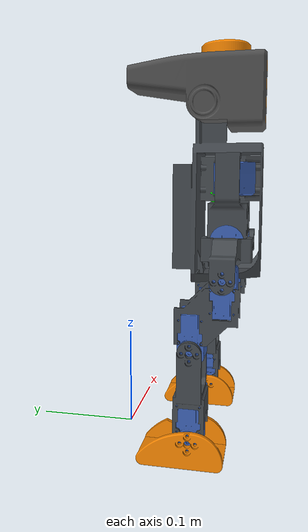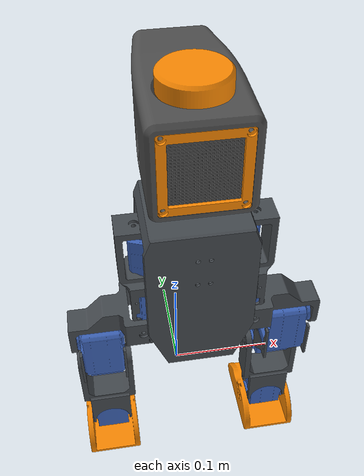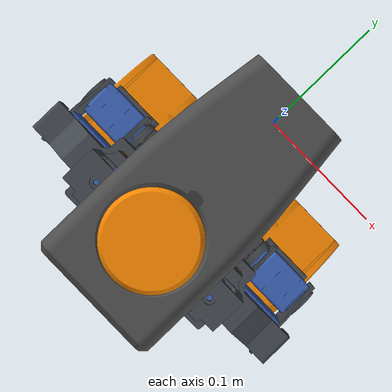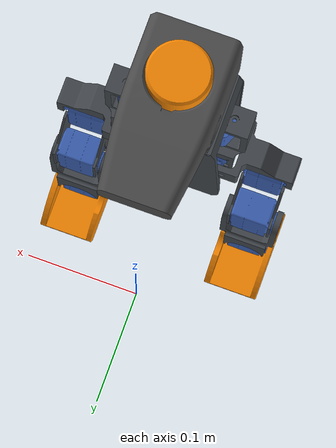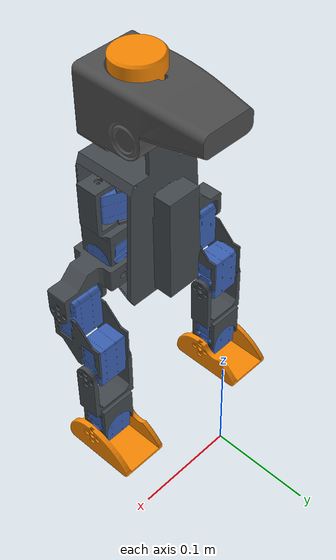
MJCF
<?xml version="1.0" ?>
<mujoco model="mini_pawo_export">
  <compiler angle="radian" meshdir="assets" autolimits="true" />
  <default>
    <default class="mini_pawo_export">
      <joint frictionloss="0.1" armature="0.015" />
      <position kp="10" dampratio="1" />
      <default class="visual">
        <geom type="mesh" contype="0" conaffinity="0" group="2" />
      </default>
      <default class="collision">
        <!-- Modified to disable self-collision but keep world collision -->
        <geom group="3" contype="1" conaffinity="0" />
      </default>
    </default>
  </default>
  <worldbody>
    <body name="torso" pos="0 0 0" quat="1 0 0 0" childclass="mini_pawo_export">
      <freejoint name="torso_freejoint" />
      <site name="imu" pos="0.000578677 -0.0890544 0.24954" size="0.01" type="sphere" rgba="0 1 0 1"/>
      <inertial pos="0.000578677 -0.0890544 0.24954" mass="0.420" fullinertia="0.000484452 0.000463436 0.000276136 -8.03923e-06 -6.23499e-07 7.19998e-05" />
      <geom type="mesh" class="visual" pos="0.000725367 -0.136837 0.34695" quat="1 1.7005e-08 7.105e-09 -8.081e-09" mesh="frame" material="frame_material" />
      <geom type="mesh" class="collision" pos="0.000725367 -0.136837 0.34695" quat="1 1.7005e-08 7.105e-09 -8.081e-09" mesh="frame" material="frame_material" />
      <geom type="mesh" class="visual" pos="0.000796077 -0.136877 0.347021" quat="1 1.7005e-08 7.105e-09 -8.081e-09" mesh="face" material="face_material" />
      <geom type="mesh" class="collision" pos="0.000796077 -0.136877 0.347021" quat="1 1.7005e-08 7.105e-09 -8.081e-09" mesh="face" material="face_material" />
      <geom type="mesh" class="visual" pos="0.00108385 -0.101194 0.195319" quat="1 1.7005e-08 7.105e-09 -8.081e-09" mesh="left_hip_yaw_servo" material="left_hip_yaw_servo_material" />
      <geom type="mesh" class="collision" pos="0.00108385 -0.101194 0.195319" quat="1 1.7005e-08 7.105e-09 -8.081e-09" mesh="left_hip_yaw_servo" material="left_hip_yaw_servo_material" />
      <geom type="mesh" class="visual" pos="0.00109354 -0.101247 0.195319" quat="1 1.7005e-08 7.105e-09 -8.081e-09" mesh="right_hip_yaw_servo" material="right_hip_yaw_servo_material" />
      <geom type="mesh" class="collision" pos="0.00109354 -0.101247 0.195319" quat="1 1.7005e-08 7.105e-09 -8.081e-09" mesh="right_hip_yaw_servo" material="right_hip_yaw_servo_material" />
      <geom type="mesh" class="visual" pos="0.00111615 -0.101226 0.195298" quat="1 1.7005e-08 7.105e-09 -8.081e-09" mesh="torso" material="torso_material" />
      <geom type="mesh" class="collision" pos="0.00111615 -0.101226 0.195298" quat="1 1.7005e-08 7.105e-09 -8.081e-09" mesh="torso" material="torso_material" />
      <geom type="mesh" class="visual" pos="0.000725367 -0.136977 0.34695" quat="1 1.7005e-08 7.105e-09 -8.081e-09" mesh="head" material="head_material" />
      <geom type="mesh" class="collision" pos="0.000725367 -0.136977 0.34695" quat="1 1.7005e-08 7.105e-09 -8.081e-09" mesh="head" material="head_material" />
      <geom type="mesh" class="visual" pos="0.000725367 -0.136977 0.34695" quat="1 1.7005e-08 7.105e-09 -8.081e-09" mesh="lidar" material="lidar_material" />
      <geom type="mesh" class="collision" pos="0.000725367 -0.136977 0.34695" quat="1 1.7005e-08 7.105e-09 -8.081e-09" mesh="lidar" material="lidar_material" />
      <body name="left_hip_yaw_case" pos="0.0363247 -0.103778 0.282335" quat="1.7005e-08 -1 -4.313e-09 7.105e-09">
        <joint axis="0 0 1" name="left_hip_yaw" type="hinge" range="-3.14 3.14" />
        <inertial pos="0.00235874 0.000276912 0.0576388" mass="0.088" fullinertia="6.22352e-05 6.22289e-05 1.53551e-05 -6.948e-08 -8.35602e-06 -3.70517e-07" />
        <geom type="mesh" class="visual" pos="-0.0358409 -0.00248042 0.0863252" quat="0 1 0 0" mesh="left_hip_yaw_case" material="left_hip_yaw_case_material" />
        <geom type="mesh" class="collision" pos="-0.0358409 -0.00248042 0.0863252" quat="0 1 0 0" mesh="left_hip_yaw_case" material="left_hip_yaw_case_material" />
        <geom type="mesh" class="visual" pos="-0.0356071 -0.00255163 0.0863215" quat="0 -1 -0 -0" mesh="left_hip_roll_servo" material="left_hip_roll_servo_material" />
        <geom type="mesh" class="collision" pos="-0.0356071 -0.00255163 0.0863215" quat="0 -1 -0 -0" mesh="left_hip_roll_servo" material="left_hip_roll_servo_material" />
        <body name="left_hip_roll_case" pos="-9.81985e-05 -0.0186498 0.0842236" quat="0.707107 -0.707107 3.864e-09 3.864e-09">
          <joint axis="0 0 1" name="left_hip_roll" type="hinge" range="-3.14 3.14" />
          <inertial pos="0.0275104 -0.00289827 0.0186226" mass="0.042" fullinertia="9.7662e-06 1.9477e-05 1.69846e-05 -2.0618e-06 -1.196e-09 -1.915e-09" />
          <geom type="mesh" class="visual" pos="-0.0354652 -0.00212887 0.0164546" quat="0.707107 -0.707107 -0 0" mesh="left_hip_roll_case" material="left_hip_roll_case_material" />
          <geom type="mesh" class="collision" pos="-0.0354652 -0.00212887 0.0164546" quat="0.707107 -0.707107 -0 0" mesh="left_hip_roll_case" material="left_hip_roll_case_material" />
          <body name="left_hip_pitch_case" pos="0.05825 -0.0222987 0.0186748" quat="0.707107 -1.0736e-08 0.707107 -1.0736e-08">
            <joint axis="0 0 1" name="left_hip_pitch" type="hinge" range="-3.14 3.14" />
            <inertial pos="0.013894 -0.0327895 -0.0186066" mass="0.123" fullinertia="7.95883e-05 4.23439e-05 9.65542e-05 -3.20003e-05 -1.55598e-07 -2.2858e-07" />
            <geom type="mesh" class="visual" pos="0.00224067 0.0201372 -0.0943654" quat="0.5 -0.5 -0.5 -0.5" mesh="left_hip_pitch_servo" material="left_hip_pitch_servo_material" />
            <geom type="mesh" class="collision" pos="0.00224067 0.0201372 -0.0943654" quat="0.5 -0.5 -0.5 -0.5" mesh="left_hip_pitch_servo" material="left_hip_pitch_servo_material" />
            <geom type="mesh" class="visual" pos="0.002258 0.0201794 -0.0943436" quat="0.5 -0.5 -0.5 -0.5" mesh="left_hip_pitch_case" material="left_hip_pitch_case_material" />
            <geom type="mesh" class="collision" pos="0.002258 0.0201794 -0.0943436" quat="0.5 -0.5 -0.5 -0.5" mesh="left_hip_pitch_case" material="left_hip_pitch_case_material" />
            <geom type="mesh" class="visual" pos="0.00228617 0.0201665 -0.0941654" quat="0.5 -0.5 -0.5 -0.5" mesh="left_knee_servo" material="left_knee_servo_material" />
            <geom type="mesh" class="collision" pos="0.00228617 0.0201665 -0.0941654" quat="0.5 -0.5 -0.5 -0.5" mesh="left_knee_servo" material="left_knee_servo_material" />
            <body name="left_knee_case" pos="0.027788 -0.0655791 -0.0376" quat="0.953717 0 0 0.300706">
              <joint axis="0 0 1" name="left_knee" type="hinge" range="-3.14 3.14" />
              <inertial pos="-0.0319413 -0.0464947 0.0188933" mass="0.09" fullinertia="5.10572e-05 3.44913e-05 5.52052e-05 -2.1165e-05 -1.10964e-07 -1.68052e-07" />
              <geom type="mesh" class="visual" pos="-0.0256451 0.0857559 -0.0561875" quat="0.5 -0.5 -0.5 -0.5" mesh="left_ankle_servo" material="left_ankle_servo_material" />
              <geom type="mesh" class="collision" pos="-0.0256451 0.0857559 -0.0561875" quat="0.5 -0.5 -0.5 -0.5" mesh="left_ankle_servo" material="left_ankle_servo_material" />
              <geom type="mesh" class="visual" pos="-0.0256872 0.0857043 -0.057205" quat="0.5 -0.5 -0.5 -0.5" mesh="left_knee_case" material="left_knee_case_material" />
              <geom type="mesh" class="collision" pos="-0.0256872 0.0857043 -0.057205" quat="0.5 -0.5 -0.5 -0.5" mesh="left_knee_case" material="left_knee_case_material" />
              <body name="left_foot" pos="-0.0469754 -0.0683012 -0.000174995" quat="0.953717 -0 -0 -0.300706">
                <joint axis="0 0 1" name="left_ankle" type="hinge" range="-3.14 3.14" />
                <inertial pos="0.0065865 -0.0167241 0.0187619" mass="0.036" fullinertia="1.14862e-05 2.53897e-05 1.86586e-05 6.35074e-07 -6.0493e-08 -1.64915e-07" />
                <geom name="left_foot_visual" type="mesh" class="visual" pos="0.0212202 0.153948 -0.0568561" quat="0.5 -0.5 -0.5 -0.5" mesh="left_foot" material="left_foot_material" />
                <geom class="collision" name="left_foot_collision" type="cylinder" size="0.02 0.04" pos="0.007 -0.007 0.02" euler="0 1.5708 0" friction="1.0 0.005 0.0001"/>
                <site name="left_foot_site" type="cylinder" size="0.02 0.04" pos="0.007 -0.007 0.02" euler="0 1.5708 0" rgba="0 1 0 0"/>
              </body>
            </body>
          </body>
        </body>
      </body>
      <body name="right_hip_yaw_case" pos="-0.0348965 -0.104355 0.282335" quat="1.7005e-08 -1 -4.313e-09 7.105e-09">
        <joint axis="0 0 1" name="right_hip_yaw" type="hinge" range="-3.14 3.14" />
        <inertial pos="-0.00235874 0.000276913 0.0576388" mass="0.088" fullinertia="6.22352e-05 6.22288e-05 1.53551e-05 -6.9478e-08 -8.35603e-06 -3.70518e-07" />
        <geom type="mesh" class="visual" pos="0.0358409 -0.00248042 0.0863252" quat="0 1 0 0" mesh="right_hip_yaw_case" material="right_hip_yaw_case_material" />
        <geom type="mesh" class="collision" pos="0.0358409 -0.00248042 0.0863252" quat="0 1 0 0" mesh="right_hip_yaw_case" material="right_hip_yaw_case_material" />
        <geom type="mesh" class="visual" pos="0.0356071 -0.00255163 0.0863215" quat="0 -1 0 0" mesh="right_hip_roll_servo" material="right_hip_roll_servo_material" />
        <geom type="mesh" class="collision" pos="0.0356071 -0.00255163 0.0863215" quat="0 -1 0 0" mesh="right_hip_roll_servo" material="right_hip_roll_servo_material" />
        <body name="right_hip_roll_case" pos="9.81985e-05 -0.0186498 0.0842236" quat="0.707107 -0.707107 3.864e-09 3.864e-09">
          <joint axis="0 0 1" name="right_hip_roll" type="hinge" range="-3.14 3.14" />
          <inertial pos="-0.0275104 -0.00289827 0.0186226" mass="0.042" fullinertia="9.7662e-06 1.9477e-05 1.69846e-05 -2.0618e-06 -1.196e-09 -1.915e-09" />
          <geom type="mesh" class="visual" pos="0.0354652 -0.00212887 0.0164546" quat="0.707107 -0.707107 0 0" mesh="right_hip_roll_case" material="right_hip_roll_case_material" />
          <geom type="mesh" class="collision" pos="0.0354652 -0.00212887 0.0164546" quat="0.707107 -0.707107 0 0" mesh="right_hip_roll_case" material="right_hip_roll_case_material" />
          <body name="right_hip_pitch_case" pos="-0.021 -0.0222987 0.0186748" quat="0.707107 -1.0736e-08 0.707107 -1.0736e-08">
            <joint axis="0 0 1" name="right_hip_pitch" type="hinge" range="-3.14 3.14" />
            <inertial pos="0.013894 -0.0327895 -0.0189934" mass="0.123" fullinertia="7.95883e-05 4.23439e-05 9.65542e-05 3.20003e-05 -1.55598e-07 2.2858e-07" />
            <geom type="mesh" class="visual" pos="0.00228617 0.0201665 0.0567654" quat="0.5 -0.5 -0.5 -0.5" mesh="right_knee_servo" material="right_knee_servo_material" />
            <geom type="mesh" class="collision" pos="0.00228617 0.0201665 0.0567654" quat="0.5 -0.5 -0.5 -0.5" mesh="right_knee_servo" material="right_knee_servo_material" />
            <geom type="mesh" class="visual" pos="0.00224067 0.0201372 0.0565654" quat="0.5 -0.5 -0.5 -0.5" mesh="right_hip_pitch_servo" material="right_hip_pitch_servo_material" />
            <geom type="mesh" class="collision" pos="0.00224067 0.0201372 0.0565654" quat="0.5 -0.5 -0.5 -0.5" mesh="right_hip_pitch_servo" material="right_hip_pitch_servo_material" />
            <geom type="mesh" class="visual" pos="0.002258 0.0201794 0.0567436" quat="0.5 -0.5 -0.5 -0.5" mesh="right_hip_pitch_case" material="right_hip_pitch_case_material" />
            <geom type="mesh" class="collision" pos="0.002258 0.0201794 0.0567436" quat="0.5 -0.5 -0.5 -0.5" mesh="right_hip_pitch_case" material="right_hip_pitch_case_material" />
            <body name="right_knee_case" pos="0.027788 -0.0655791 -0.0376" quat="0.953717 0 0 0.300706">
              <joint axis="0 0 1" name="right_knee" type="hinge" range="-3.14 3.14" />
              <inertial pos="-0.0319675 -0.0465268 0.0182431" mass="0.09" fullinertia="5.11278e-05 3.4532e-05 5.53101e-05 -2.12155e-05 -1.92518e-07 -2.87839e-07" />
              <geom type="mesh" class="visual" pos="-0.0256872 0.0857043 0.093255" quat="0.5 -0.5 -0.5 -0.5" mesh="right_ankle_servo" material="right_ankle_servo_material" />
              <geom type="mesh" class="collision" pos="-0.0256872 0.0857043 0.093255" quat="0.5 -0.5 -0.5 -0.5" mesh="right_ankle_servo" material="right_ankle_servo_material" />
              <geom type="mesh" class="visual" pos="-0.0256872 0.0857043 0.094455" quat="0.5 -0.5 -0.5 -0.5" mesh="right_knee_case" material="right_knee_case_material" />
              <geom type="mesh" class="collision" pos="-0.0256872 0.0857043 0.094455" quat="0.5 -0.5 -0.5 -0.5" mesh="right_knee_case" material="right_knee_case_material" />
              <body name="right_foot" pos="-0.0470175 -0.0683527 -0.000557531" quat="0.953717 -0 0 -0.300706">
                <joint axis="0 0 1" name="right_ankle" type="hinge" range="-3.14 3.14" />
                <inertial pos="0.00658657 -0.0167241 0.0184881" mass="0.036" fullinertia="1.14863e-05 2.53896e-05 1.86585e-05 6.35039e-07 6.0488e-08 1.64901e-07" />
                <geom name="right_foot_visual" type="mesh" class="visual" pos="0.0212202 0.153948 0.0941061" quat="0.5 -0.5 -0.5 -0.5" mesh="right_foot" material="right_foot_material" />
                <geom class="collision" name="right_foot_collision" type="cylinder" size="0.02 0.04" pos="0.007 -0.007 0.02" euler="0 1.5708 0" friction="1.0 0.005 0.0001"/>
                <site name="right_foot_site" type="cylinder" size="0.02 0.04" pos="0.007 -0.007 0.02" euler="0 1.5708 0" rgba="0 1 0 0"/>
              </body>
            </body>
          </body>
        </body>
      </body>
    </body>
  </worldbody>
  <asset>
    <mesh file="right_hip_pitch_case.stl" />
    <mesh file="left_ankle_servo.stl" />
    <mesh file="torso.stl" />
    <mesh file="right_ankle_servo.stl" />
    <mesh file="left_hip_pitch_servo.stl" />
    <mesh file="left_hip_yaw_case.stl" />
    <mesh file="right_knee_servo.stl" />
    <mesh file="right_hip_roll_case.stl" />
    <mesh file="right_hip_yaw_case.stl" />
    <mesh file="right_hip_yaw_servo.stl" />
    <mesh file="face.stl" />
    <mesh file="left_hip_roll_servo.stl" />
    <mesh file="head.stl" />
    <mesh file="frame.stl" />
    <mesh file="right_knee_case.stl" />
    <mesh file="lidar.stl" />
    <mesh file="left_hip_pitch_case.stl" />
    <mesh file="right_hip_roll_servo.stl" />
    <mesh file="right_hip_pitch_servo.stl" />
    <mesh file="left_knee_case.stl" />
    <mesh file="left_knee_servo.stl" />
    <mesh file="left_hip_yaw_servo.stl" />
    <mesh file="right_foot.stl" />
    <mesh file="left_hip_roll_case.stl" />
    <mesh file="left_foot.stl" />
    <material name="frame_material" rgba="0.972549 0.529412 0.00392157 1" />
    <material name="face_material" rgba="0.301961 0.301961 0.301961 1" />
    <material name="left_hip_yaw_servo_material" rgba="0.231373 0.380392 0.705882 1" />
    <material name="right_hip_yaw_servo_material" rgba="0.231373 0.380392 0.705882 1" />
    <material name="torso_material" rgba="0.262745 0.282353 0.301961 1" />
    <material name="head_material" rgba="0.301961 0.301961 0.301961 1" />
    <material name="lidar_material" rgba="0.972549 0.529412 0.00392157 1" />
    <material name="left_hip_yaw_case_material" rgba="0.262745 0.282353 0.301961 1" />
    <material name="left_hip_roll_servo_material" rgba="0.231373 0.380392 0.705882 1" />
    <material name="left_hip_roll_case_material" rgba="0.262745 0.282353 0.301961 1" />
    <material name="left_hip_pitch_servo_material" rgba="0.231373 0.380392 0.705882 1" />
    <material name="left_hip_pitch_case_material" rgba="0.262745 0.282353 0.301961 1" />
    <material name="left_knee_servo_material" rgba="0.231373 0.380392 0.705882 1" />
    <material name="left_ankle_servo_material" rgba="0.231373 0.380392 0.705882 1" />
    <material name="left_knee_case_material" rgba="0.262745 0.282353 0.301961 1" />
    <material name="left_foot_material" rgba="0.972549 0.529412 0.00392157 1" />
    <material name="right_hip_yaw_case_material" rgba="0.262745 0.282353 0.301961 1" />
    <material name="right_hip_roll_servo_material" rgba="0.231373 0.380392 0.705882 1" />
    <material name="right_hip_roll_case_material" rgba="0.262745 0.282353 0.301961 1" />
    <material name="right_knee_servo_material" rgba="0.231373 0.380392 0.705882 1" />
    <material name="right_hip_pitch_servo_material" rgba="0.231373 0.380392 0.705882 1" />
    <material name="right_hip_pitch_case_material" rgba="0.262745 0.282353 0.301961 1" />
    <material name="right_ankle_servo_material" rgba="0.231373 0.380392 0.705882 1" />
    <material name="right_knee_case_material" rgba="0.262745 0.282353 0.301961 1" />
    <material name="right_foot_material" rgba="0.972549 0.529412 0.00392157 1" />
  </asset>

  <contact>
    <!-- Torso with everything else -->
    <exclude body1="torso" body2="left_hip_yaw_case"/>
    <exclude body1="torso" body2="left_hip_roll_case"/>
    <exclude body1="torso" body2="left_hip_pitch_case"/>
    <exclude body1="torso" body2="left_knee_case"/>
    <exclude body1="torso" body2="left_foot"/>
    <exclude body1="torso" body2="right_hip_yaw_case"/>
    <exclude body1="torso" body2="right_hip_roll_case"/>
    <exclude body1="torso" body2="right_hip_pitch_case"/>
    <exclude body1="torso" body2="right_knee_case"/>
    <exclude body1="torso" body2="right_foot"/>

    <!-- Left leg internal -->
    <exclude body1="left_hip_yaw_case" body2="left_hip_roll_case"/>
    <exclude body1="left_hip_yaw_case" body2="left_hip_pitch_case"/>
    <exclude body1="left_hip_yaw_case" body2="left_knee_case"/>
    <exclude body1="left_hip_yaw_case" body2="left_foot"/>
    <exclude body1="left_hip_roll_case" body2="left_hip_pitch_case"/>
    <exclude body1="left_hip_roll_case" body2="left_knee_case"/>
    <exclude body1="left_hip_roll_case" body2="left_foot"/>
    <exclude body1="left_hip_pitch_case" body2="left_knee_case"/>
    <exclude body1="left_hip_pitch_case" body2="left_foot"/>
    <exclude body1="left_knee_case" body2="left_foot"/>

    <!-- Right leg internal -->
    <exclude body1="right_hip_yaw_case" body2="right_hip_roll_case"/>
    <exclude body1="right_hip_yaw_case" body2="right_hip_pitch_case"/>
    <exclude body1="right_hip_yaw_case" body2="right_knee_case"/>
    <exclude body1="right_hip_yaw_case" body2="right_foot"/>
    <exclude body1="right_hip_roll_case" body2="right_hip_pitch_case"/>
    <exclude body1="right_hip_roll_case" body2="right_knee_case"/>
    <exclude body1="right_hip_roll_case" body2="right_foot"/>
    <exclude body1="right_hip_pitch_case" body2="right_knee_case"/>
    <exclude body1="right_hip_pitch_case" body2="right_foot"/>
    <exclude body1="right_knee_case" body2="right_foot"/>

    <!-- Left and right legs cross-exclusion -->
    <exclude body1="left_hip_yaw_case" body2="right_hip_yaw_case"/>
    <exclude body1="left_hip_yaw_case" body2="right_hip_roll_case"/>
    <exclude body1="left_hip_yaw_case" body2="right_hip_pitch_case"/>
    <exclude body1="left_hip_yaw_case" body2="right_knee_case"/>
    <exclude body1="left_hip_yaw_case" body2="right_foot"/>

    <exclude body1="left_hip_roll_case" body2="right_hip_yaw_case"/>
    <exclude body1="left_hip_roll_case" body2="right_hip_roll_case"/>
    <exclude body1="left_hip_roll_case" body2="right_hip_pitch_case"/>
    <exclude body1="left_hip_roll_case" body2="right_knee_case"/>
    <exclude body1="left_hip_roll_case" body2="right_foot"/>

    <exclude body1="left_hip_pitch_case" body2="right_hip_yaw_case"/>
    <exclude body1="left_hip_pitch_case" body2="right_hip_roll_case"/>
    <exclude body1="left_hip_pitch_case" body2="right_hip_pitch_case"/>
    <exclude body1="left_hip_pitch_case" body2="right_knee_case"/>
    <exclude body1="left_hip_pitch_case" body2="right_foot"/>

    <exclude body1="left_knee_case" body2="right_hip_yaw_case"/>
    <exclude body1="left_knee_case" body2="right_hip_roll_case"/>
    <exclude body1="left_knee_case" body2="right_hip_pitch_case"/>
    <exclude body1="left_knee_case" body2="right_knee_case"/>
    <exclude body1="left_knee_case" body2="right_foot"/>

    <exclude body1="left_foot" body2="right_hip_yaw_case"/>
    <exclude body1="left_foot" body2="right_hip_roll_case"/>
    <exclude body1="left_foot" body2="right_hip_pitch_case"/>
    <exclude body1="left_foot" body2="right_knee_case"/>
  </contact>

  <sensor>
    <gyro name="imu_ang_vel" site="imu"/>
    <velocimeter name="imu_lin_vel" site="imu"/>
    <accelerometer name="imu_lin_acc" site="imu"/>
    <subtreeangmom name="root_angmom" body="torso"/>
    <touch name="sensor_l_foot" site="left_foot_site"/>
    <touch name="sensor_r_foot" site="right_foot_site"/>
  </sensor>

  <equality />
</mujoco>
